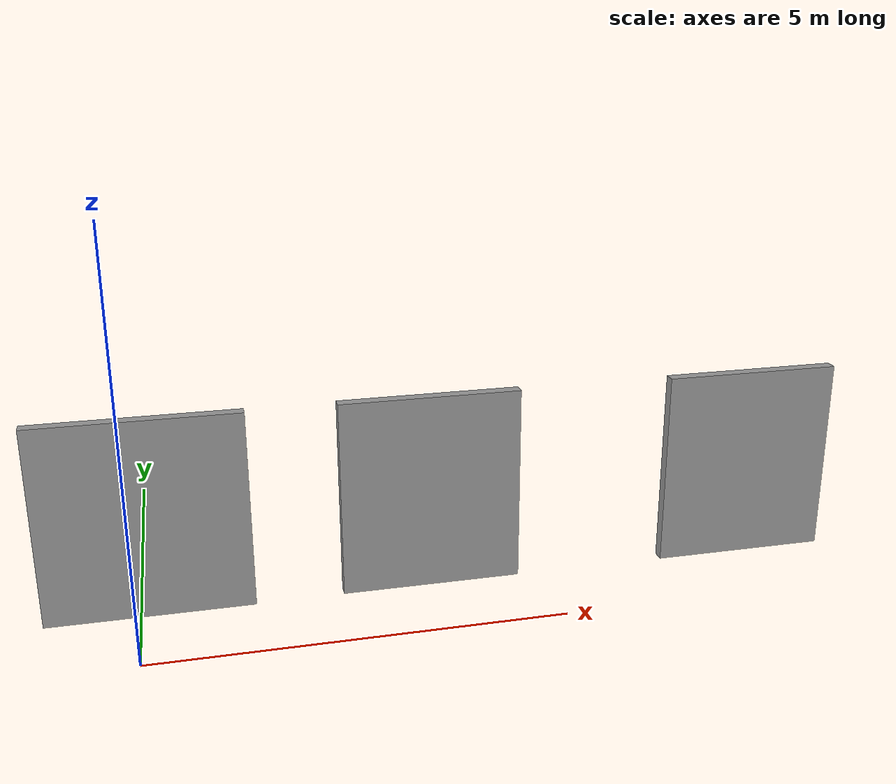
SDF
<?xml version='1.0'?>
<sdf version='1.7'>
  <model name='mapa'>
    <pose>3.88454 0.633788 0 0 -0 0</pose>
    <link name='Wall_5'>
      <collision name='Wall_5_Collision'>
        <geometry>
          <box>
            <size>2.5 0.15 2.5</size>
          </box>
        </geometry>
        <pose>0 0 1.25 0 -0 0</pose>
      </collision>
      <visual name='Wall_5_Visual'>
        <pose>0 0 1.25 0 -0 0</pose>
        <geometry>
          <box>
            <size>2.5 0.15 2.5</size>
          </box>
        </geometry>
        <material>
          <script>
            <uri>file://media/materials/scripts/gazebo.material</uri>
            <name>Gazebo/Grey</name>
          </script>
          <ambient>1 1 1 1</ambient>
        </material>
        <meta>
          <layer>0</layer>
        </meta>
      </visual>
      <pose>-3.76954 0.544212 0 0 -0 0</pose>
    </link>
    <link name='Wall_7'>
      <collision name='Wall_7_Collision'>
        <geometry>
          <box>
            <size>2.25 0.15 2.5</size>
          </box>
        </geometry>
        <pose>0 0 1.25 0 -0 0</pose>
      </collision>
      <visual name='Wall_7_Visual'>
        <pose>0 0 1.25 0 -0 0</pose>
        <geometry>
          <box>
            <size>2.25 0.15 2.5</size>
          </box>
        </geometry>
        <material>
          <script>
            <uri>file://media/materials/scripts/gazebo.material</uri>
            <name>Gazebo/Grey</name>
          </script>
          <ambient>1 1 1 1</ambient>
        </material>
        <meta>
          <layer>0</layer>
        </meta>
      </visual>
      <pose>-0.310017 0.558787 0 0 -0 0</pose>
    </link>
    <link name='Wall_9'>
      <collision name='Wall_9_Collision'>
        <geometry>
          <box>
            <size>2.25 0.15 2.5</size>
          </box>
        </geometry>
        <pose>0 0 1.25 0 -0 0</pose>
      </collision>
      <visual name='Wall_9_Visual'>
        <pose>0 0 1.25 0 -0 0</pose>
        <geometry>
          <box>
            <size>2.25 0.15 2.5</size>
          </box>
        </geometry>
        <material>
          <script>
            <uri>file://media/materials/scripts/gazebo.material</uri>
            <name>Gazebo/Grey</name>
          </script>
          <ambient>1 1 1 1</ambient>
        </material>
        <meta>
          <layer>0</layer>
        </meta>
      </visual>
      <pose>3.89454 0.542675 0 0 -0 0</pose>
    </link>
    <static>1</static>
  </model>
</sdf>
